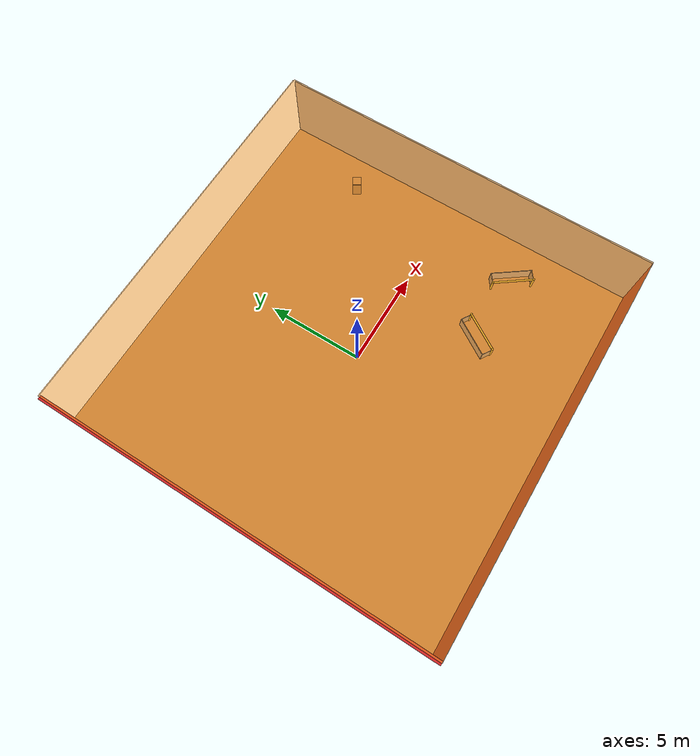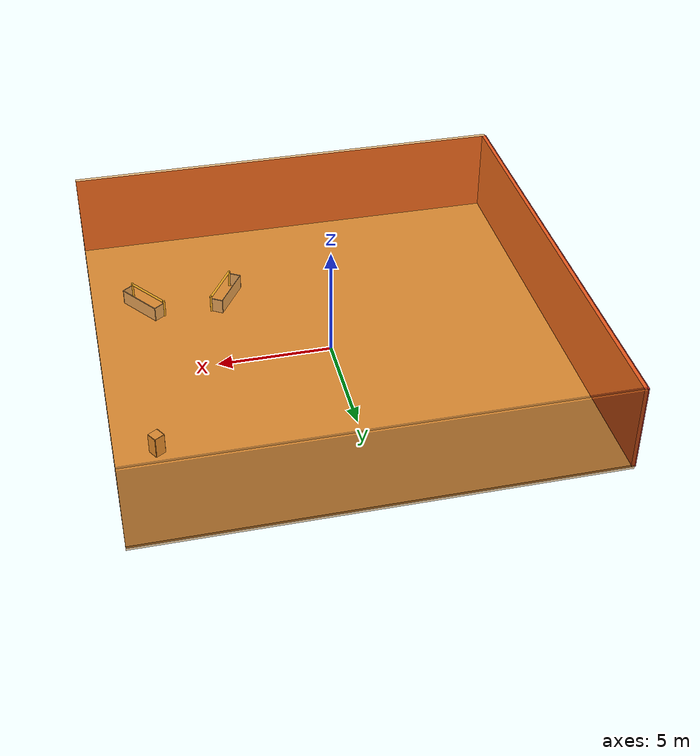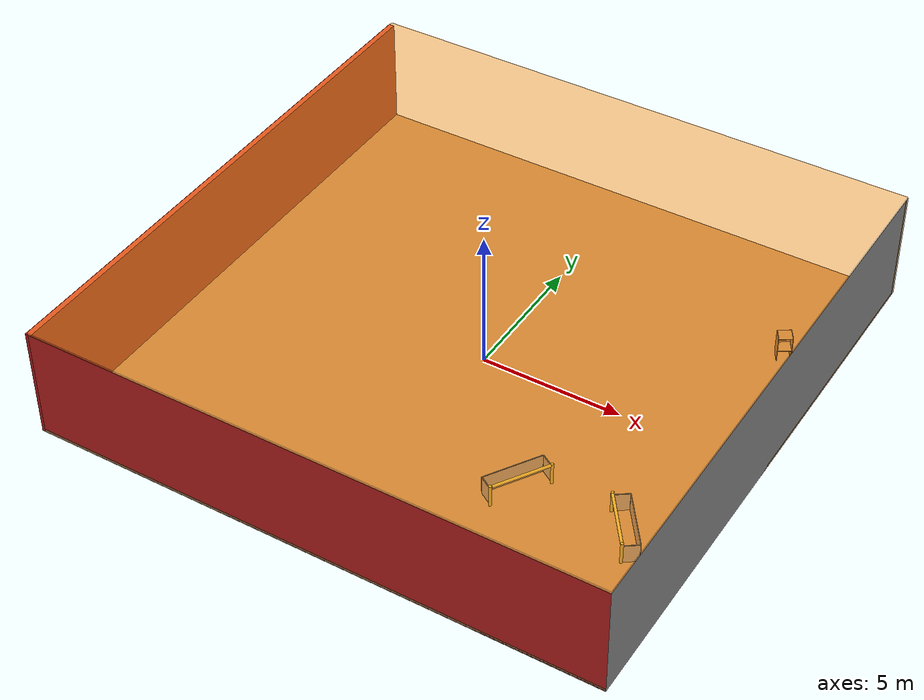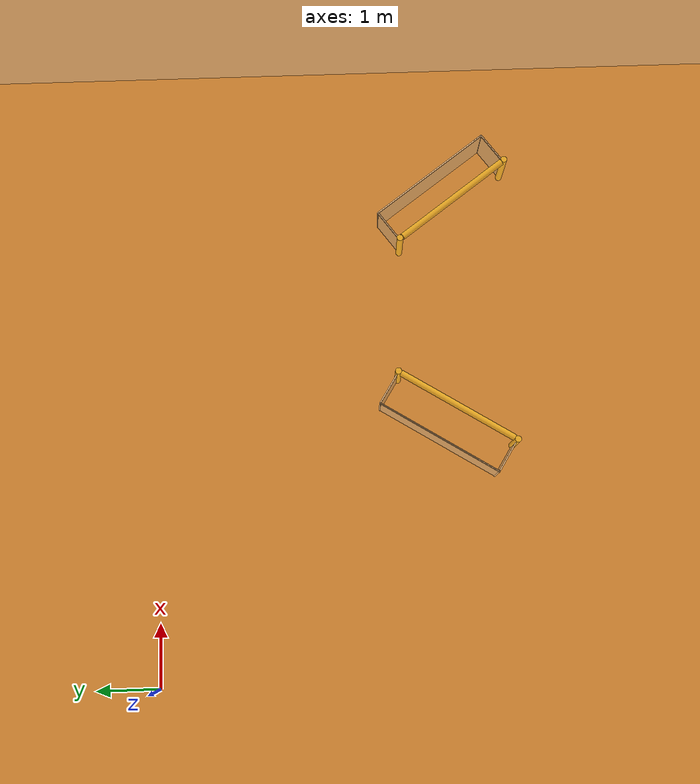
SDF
<sdf version="1.4">
 <world name="default">
  <physics type="ode">
   <max_step_size>0.001</max_step_size>
   <real_time_factor>1</real_time_factor>
   <real_time_update_rate>1000</real_time_update_rate>
   <gravity>0 0 -9.8</gravity>
  </physics>
  <scene><ambient>0.4 0.4 0.4 1</ambient><background>0.7 0.7 0.7 1</background><shadows>1</shadows></scene>
  <model name="Surrounding">
   <static>1</static>
   <link name="Ceiling">
    <collision name="Ceiling_Collision"><geometry><box><size>20 20 0.1</size></box></geometry></collision>
    <visual name="Ceiling_Visual">
     <geometry><box><size>20 20 0.1</size></box></geometry>
     <material>
      <script>
       <uri>file://media/materials/scripts/gazebo.material</uri>
       <name>Gazebo/OrangeTransparent</name>
      </script>
     </material>
    </visual>
    <pose>0 0 4.05 0 0 0</pose>
   </link>
   <link name="Wall_South">
    <collision name="Wall_South_Collision">
     <geometry><box><size>20 0 4</size></box></geometry>
     <pose>0 0 2 0 -0 0</pose>
    </collision>
    <visual name="Wall_South_Visual">
     <pose>0 0 2 0 -0 0</pose>
     <geometry><box><size>20 0 4</size></box></geometry>
     <material>
      <script><uri>file://media/materials/scripts/gazebo.material</uri><name>Gazebo/RedBright</name></script>
     </material>
    </visual>
    <velocity_decay><linear>0</linear><angular>0</angular></velocity_decay>
    <pose>0 -10 0 0 -0 0</pose>
   </link>
   <link name="Wall_East">
    <collision name="Wall_21_Collision">
     <geometry><box><size>20 0 4</size></box></geometry>
     <pose>0 0 2 0 -0 0</pose>
    </collision>
    <visual name="Wall_21_Visual">
     <pose>0 0 2 0 -0 0</pose>
     <geometry><box><size>20 0 4</size></box></geometry>
     <material>
      <script><uri>file://media/materials/scripts/gazebo.material</uri><name>Gazebo/LightOff</name></script>
     </material>
    </visual>
    <velocity_decay><linear>0</linear><angular>0</angular></velocity_decay>
    <pose>10 0 0 0 -0 1.5708</pose>
   </link>
   <link name="Wall_North">
    <collision name="Wall_22_Collision">
     <geometry><box><size>20 0.2 4</size></box></geometry>
     <pose>0 0 2 0 -0 0</pose>
    </collision>
    <visual name="Wall_22_Visual">
     <pose>0 0 2 0 -0 0</pose>
     <geometry><box><size>20 0.2 4</size></box></geometry>
     <material>
      <script>
       <uri>file://media/materials/scripts/gazebo.material</uri>
       <name>Gazebo/OrangeTransparent</name>
      </script>
     </material>
    </visual>
    <velocity_decay><linear>0</linear><angular>0</angular></velocity_decay>
    <pose>0 10 0 0 -0 0</pose>
   </link>
   <link name="Wall_West">
    <collision name="Wall_23_Collision">
     <geometry><box><size>20 0.2 4</size></box></geometry>
     <pose>0 0 2 0 -0 0</pose>
    </collision>
    <visual name="Wall_23_Visual">
     <pose>0 0 2 0 -0 0</pose>
     <geometry><box><size>20 0.2 4</size></box></geometry>
     <material>
      <script><uri>file://media/materials/scripts/gazebo.material</uri><name>Gazebo/Red</name></script>
     </material>
    </visual>
    <velocity_decay><linear>0</linear><angular>0</angular></velocity_decay>
    <pose>-10 0 0 0 0 -1.5708</pose>
   </link>
   <link name="Ground_link">
    <collision name="collision">
     <pose>0 0 .05 0 -0 0</pose>
     <geometry><box><size>20 20 0.1</size></box></geometry>
    </collision>
    <visual name="visual">
     <pose>0 0 .05 0 -0 0</pose>
     <geometry><box><size>20 20 0.1</size></box></geometry>
     <material>
      <script><uri>file://media/materials/scripts/gazebo.material</uri><name>Gazebo/WoodPallet</name></script>
     </material>
    </visual>
   </link>
   <static>1</static>
  </model>
  <spherical_coordinates>
   <surface_model>EARTH_WGS84</surface_model>
   <latitude_deg>0</latitude_deg>
   <longitude_deg>0</longitude_deg>
   <elevation>0</elevation>
   <heading_deg>0</heading_deg>
  </spherical_coordinates>
  <light name="lightball_0" type="diffuse">
   <diffuse>0.8 0.8 0.8 1</diffuse>
   <specular>0.2 0.2 0.2 1</specular>
   <attenuation>
    <range>100</range>
    <constant>0.7</constant>
    <linear>0.01</linear>
    <quadratic>0.001</quadratic>
   </attenuation>
   <direction>-0.5 0.1 -0.9</direction>
   <pose>2.02822742314 -7.43273027815 3.47182433249 0 0 0</pose>
  </light>
  <light name="lightball_1" type="diffuse">
   <diffuse>0.8 0.8 0.8 1</diffuse>
   <specular>0.2 0.2 0.2 1</specular>
   <attenuation>
    <range>100</range>
    <constant>0.7</constant>
    <linear>0.01</linear>
    <quadratic>0.001</quadratic>
   </attenuation>
   <direction>-0.5 0.1 -0.9</direction>
   <pose>2.70705218324 -8.29337326584 3.76907231345 0 0 0</pose>
  </light>
  <light name="lightball_2" type="diffuse">
   <diffuse>0.8 0.8 0.8 1</diffuse>
   <specular>0.2 0.2 0.2 1</specular>
   <attenuation>
    <range>100</range>
    <constant>0.7</constant>
    <linear>0.01</linear>
    <quadratic>0.001</quadratic>
   </attenuation>
   <direction>-0.5 0.1 -0.9</direction>
   <pose>-5.83278828208 -8.48495091581 0.834533819529 0 0 0</pose>
  </light>
  <light name="lightball_3" type="diffuse">
   <diffuse>0.8 0.8 0.8 1</diffuse>
   <specular>0.2 0.2 0.2 1</specular>
   <attenuation>
    <range>100</range>
    <constant>0.7</constant>
    <linear>0.01</linear>
    <quadratic>0.001</quadratic>
   </attenuation>
   <direction>-0.5 0.1 -0.9</direction>
   <pose>-5.0100870508 0.258758169656 0.6900508959 0 0 0</pose>
  </light>
  <light name="lightball_4" type="diffuse">
   <diffuse>0.8 0.8 0.8 1</diffuse>
   <specular>0.2 0.2 0.2 1</specular>
   <attenuation>
    <range>100</range>
    <constant>0.7</constant>
    <linear>0.01</linear>
    <quadratic>0.001</quadratic>
   </attenuation>
   <direction>-0.5 0.1 -0.9</direction>
   <pose>-6.11734239835 3.73347508811 0.809507275743 0 0 0</pose>
  </light>
  <light name="lightball_5" type="diffuse">
   <diffuse>0.8 0.8 0.8 1</diffuse>
   <specular>0.2 0.2 0.2 1</specular>
   <attenuation>
    <range>100</range>
    <constant>0.7</constant>
    <linear>0.01</linear>
    <quadratic>0.001</quadratic>
   </attenuation>
   <direction>-0.5 0.1 -0.9</direction>
   <pose>-8.23904798625 -5.49343711796 2.361720777 0 0 0</pose>
  </light>
  <light name="lightball_6" type="diffuse">
   <diffuse>0.8 0.8 0.8 1</diffuse>
   <specular>0.2 0.2 0.2 1</specular>
   <attenuation>
    <range>100</range>
    <constant>0.7</constant>
    <linear>0.01</linear>
    <quadratic>0.001</quadratic>
   </attenuation>
   <direction>-0.5 0.1 -0.9</direction>
   <pose>-0.836042105423 8.95562979006 2.71206123058 0 0 0</pose>
  </light>
  <light name="lightball_7" type="diffuse">
   <diffuse>0.8 0.8 0.8 1</diffuse>
   <specular>0.2 0.2 0.2 1</specular>
   <attenuation>
    <range>100</range>
    <constant>0.7</constant>
    <linear>0.01</linear>
    <quadratic>0.001</quadratic>
   </attenuation>
   <direction>-0.5 0.1 -0.9</direction>
   <pose>6.96422400434 -4.09367271737 3.69587114972 0 0 0</pose>
  </light>
  <light name="lightball_8" type="diffuse">
   <diffuse>0.8 0.8 0.8 1</diffuse>
   <specular>0.2 0.2 0.2 1</specular>
   <attenuation>
    <range>100</range>
    <constant>0.7</constant>
    <linear>0.01</linear>
    <quadratic>0.001</quadratic>
   </attenuation>
   <direction>-0.5 0.1 -0.9</direction>
   <pose>4.58202139513 -9.31162108986 3.7621546864 0 0 0</pose>
  </light>
  <light name="lightball_9" type="diffuse">
   <diffuse>0.8 0.8 0.8 1</diffuse>
   <specular>0.2 0.2 0.2 1</specular>
   <attenuation>
    <range>100</range>
    <constant>0.7</constant>
    <linear>0.01</linear>
    <quadratic>0.001</quadratic>
   </attenuation>
   <direction>-0.5 0.1 -0.9</direction>
   <pose>-8.48657674588 6.46613534376 2.3858493308 0 0 0</pose>
  </light>
  <light name="lightball_10" type="diffuse">
   <diffuse>0.8 0.8 0.8 1</diffuse>
   <specular>0.2 0.2 0.2 1</specular>
   <attenuation>
    <range>100</range>
    <constant>0.7</constant>
    <linear>0.01</linear>
    <quadratic>0.001</quadratic>
   </attenuation>
   <direction>-0.5 0.1 -0.9</direction>
   <pose>-4.98710262832 0.0998043117083 3.25415718354 0 0 0</pose>
  </light>
  <light name="lightball_11" type="diffuse">
   <diffuse>0.8 0.8 0.8 1</diffuse>
   <specular>0.2 0.2 0.2 1</specular>
   <attenuation>
    <range>100</range>
    <constant>0.7</constant>
    <linear>0.01</linear>
    <quadratic>0.001</quadratic>
   </attenuation>
   <direction>-0.5 0.1 -0.9</direction>
   <pose>-2.55307252878 -3.54147669759 2.03474104499 0 0 0</pose>
  </light>
  <include>
   <uri>model://robocup_3Dsim_goal</uri>
   <pose>4.16369594691 -4.70731989148 0 0 0 2.58450018699</pose>
  </include>
  <include>
   <uri>model://robocup_3Dsim_goal</uri>
   <pose>7.46374022833 -4.76306444235 0 0 0 0.632480948836</pose>
  </include>
  <include><uri>model://cabinet</uri><pose>8.23957471341 5.11295179086 0 0 0 2.12172086586</pose></include>
 </world>
</sdf>

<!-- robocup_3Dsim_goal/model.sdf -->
<sdf version="1.5">
  <model name="robocup_3d_goal">
    <static>true</static>
    <link name="left_post">
      <pose>0 1.05 0.45 0 0 0</pose>
      <collision name="collision">
        <geometry>
          <cylinder>
            <radius>0.05</radius>
            <length>0.9</length>
          </cylinder>
        </geometry>
      </collision>
      <visual name="visual">
        <geometry>
          <cylinder>
            <radius>0.05</radius>
            <length>0.9</length>
          </cylinder>
        </geometry>
        <material>
          <script>
            <uri>file://media/materials/scripts/gazebo.material</uri>
            <name>Gazebo/ZincYellow</name>
          </script>
        </material>
      </visual>
    </link>
    <link name="left_support_horiz_lower">
      <pose>0.30 1.05 0.01 0 0 0</pose>
      <collision name="collision">
        <geometry>
          <box>
            <size>0.50 0.02 0.02</size>
          </box>
        </geometry>
      </collision>
      <visual name="visual">
        <geometry>
          <box>
            <size>0.50 0.02 0.02</size>
          </box>
        </geometry>
        <material>
          <script>
            <uri>file://media/materials/scripts/gazebo.material</uri>
            <name>Gazebo/White</name>
          </script>
        </material>
      </visual>
    </link>
    <link name="left_support_horiz_upper">
      <pose>0.30 1.05 0.79 0 0 0</pose>
      <collision name="collision">
        <geometry>
          <box>
            <size>0.50 0.02 0.02</size>
          </box>
        </geometry>
      </collision>
      <visual name="visual">
        <geometry>
          <box>
            <size>0.50 0.02 0.02</size>
          </box>
        </geometry>
        <material>
          <script>
            <uri>file://media/materials/scripts/gazebo.material</uri>
            <name>Gazebo/White</name>
          </script>
        </material>
      </visual>
    </link>
    <link name="left_support_vertical">
      <pose>0.56 1.05 0.4 0 1.5708 0</pose>
      <collision name="collision">
        <geometry>
          <box>
            <size>0.80 0.02 0.02</size>
          </box>
        </geometry>
      </collision>
      <visual name="visual">
        <geometry>
          <box>
            <size>0.80 0.02 0.02</size>
          </box>
        </geometry>
        <material>
          <script>
            <uri>file://media/materials/scripts/gazebo.material</uri>
            <name>Gazebo/White</name>
          </script>
        </material>
      </visual>
    </link>
    <link name="right_support_horiz_lower">
      <pose>0.30 -1.05 0.01 0 0 0</pose>
      <collision name="collision">
        <geometry>
          <box>
            <size>0.50 0.02 0.02</size>
          </box>
        </geometry>
      </collision>
      <visual name="visual">
        <geometry>
          <box>
            <size>0.50 0.02 0.02</size>
          </box>
        </geometry>
        <material>
          <script>
            <uri>file://media/materials/scripts/gazebo.material</uri>
            <name>Gazebo/White</name>
          </script>
        </material>
      </visual>
    </link>
    <link name="right_support_horiz_upper">
      <pose>0.30 -1.05 0.79 0 0 0</pose>
      <collision name="collision">
        <geometry>
          <box>
            <size>0.50 0.02 0.02</size>
          </box>
        </geometry>
      </collision>
      <visual name="visual">
        <geometry>
          <box>
            <size>0.50 0.02 0.02</size>
          </box>
        </geometry>
        <material>
          <script>
            <uri>file://media/materials/scripts/gazebo.material</uri>
            <name>Gazebo/White</name>
          </script>
        </material>
      </visual>
    </link>
    <link name="right_support_vertical">
      <pose>0.56 -1.05 0.4 0 1.5708 0</pose>
      <collision name="collision">
        <geometry>
          <box>
            <size>0.80 0.02 0.02</size>
          </box>
        </geometry>
      </collision>
      <visual name="visual">
        <geometry>
          <box>
            <size>0.80 0.02 0.02</size>
          </box>
        </geometry>
        <material>
          <script>
            <uri>file://media/materials/scripts/gazebo.material</uri>
            <name>Gazebo/White</name>
          </script>
        </material>
      </visual>
    </link>
    <link name="center_support_horiz_lower">
      <pose>0.56 0 0.01 0 1.5708 0</pose>
      <collision name="collision">
        <geometry>
          <box>
            <size>0.02 2.08 0.02</size>
          </box>
        </geometry>
      </collision>
      <visual name="visual">
        <geometry>
          <box>
            <size>0.02 2.08 0.02</size>
          </box>
        </geometry>
        <material>
          <script>
            <uri>file://media/materials/scripts/gazebo.material</uri>
            <name>Gazebo/White</name>
          </script>
        </material>
      </visual>
    </link>
    <link name="center_support_horiz_upper">
      <pose>0.56 0 0.79 0 1.5708 0</pose>
      <collision name="collision">
        <geometry>
          <box>
            <size>0.02 2.08 0.02</size>
          </box>
        </geometry>
      </collision>
      <visual name="visual">
        <geometry>
          <box>
            <size>0.02 2.08 0.02</size>
          </box>
        </geometry>
        <material>
          <script>
            <uri>file://media/materials/scripts/gazebo.material</uri>
            <name>Gazebo/White</name>
          </script>
        </material>
      </visual>
    </link>
    <link name="right_post">
      <pose>0 -1.05 0.45 0 0 0</pose>
      <collision name="collision">
        <geometry>
          <cylinder>
            <radius>0.05</radius>
            <length>0.9</length>
          </cylinder>
        </geometry>
      </collision>
      <visual name="visual">
        <geometry>
          <cylinder>
            <radius>0.05</radius>
            <length>0.9</length>
          </cylinder>
        </geometry>
        <material>
          <script>
            <uri>file://media/materials/scripts/gazebo.material</uri>
            <name>Gazebo/ZincYellow</name>
          </script>
        </material>
      </visual>
    </link>
    <link name="crossbar">
      <pose>0 0 0.85 1.57 1.57 0</pose>
      <collision name="collision">
        <geometry>
          <cylinder>
            <radius>0.05</radius>
            <length>2.0</length>
          </cylinder>
        </geometry>
      </collision>
      <visual name="visual">
        <geometry>
          <cylinder>
            <radius>0.05</radius>
            <length>2.0</length>
          </cylinder>
        </geometry>
        <material>
          <script>
            <uri>file://media/materials/scripts/gazebo.material</uri>
            <name>Gazebo/ZincYellow</name>
          </script>
        </material>
      </visual>
    </link>
    <link name="center_net">
      <pose>0.56 0 0.40 0 0 0</pose>
      <collision name="collision">
        <geometry>
          <box>
            <size>0.01 2.1 0.80</size>
          </box>
        </geometry>
      </collision>
      <visual name="visual">
        <geometry>
          <box>
            <size>0.01 2.1 0.80</size>
          </box>
        </geometry>
        <material>
          <script>
            <uri>model://../model_source/models/robocup09_spl_field/materials/scripts/</uri>
            <uri>model://../model_source/models/robocup09_spl_field/materials/textures/</uri>
            <name>RoboCup/Net</name>
          </script>
        </material>
      </visual>
    </link>
    <link name="left_net">
      <pose>0.30 1.05 0.40 0 0 0</pose>
      <collision name="collision">
        <geometry>
          <box>
            <size>0.50 0.01 0.76</size>
          </box>
        </geometry>
      </collision>
      <visual name="visual">
        <geometry>
          <box>
            <size>0.50 0.01 0.76</size>
          </box>
        </geometry>
        <material>
          <script>
            <uri>model://../model_source/models/robocup09_spl_field/materials/scripts/</uri>
            <uri>model://../model_source/models/robocup09_spl_field/materials/textures/</uri>
            <name>RoboCup/Net</name>
          </script>
        </material>
      </visual>
    </link>
    <link name="right_net">
      <pose>0.30 -1.05 0.40 0 0 0</pose>
      <collision name="collision">
        <geometry>
          <box>
            <size>0.50 0.01 0.76</size>
          </box>
        </geometry>
      </collision>
      <visual name="visual">
        <geometry>
          <box>
            <size>0.50 0.01 0.76</size>
          </box>
        </geometry>
        <material>
          <script>
            <uri>model://../model_source/models/robocup09_spl_field/materials/scripts/</uri>
            <uri>model://../model_source/models/robocup09_spl_field/materials/textures/</uri>
            <name>RoboCup/Net</name>
          </script>
        </material>
      </visual>
    </link>
  </model>
</sdf>

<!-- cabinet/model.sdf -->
<sdf version="1.5">
  <model name="cabinet">
    <static>true</static>
    <link name="cabinet_bottom_plate">
      <inertial>
        <pose>0 0 -1 0 0 0</pose>
        <inertia>
          <ixx>2.050000</ixx>
          <ixy>0</ixy>
          <ixz>0</ixz>
          <iyy>2.050000</iyy>
          <iyz>0</iyz>
          <izz>2.050000</izz>
        </inertia>
        <mass>25.000000</mass>
      </inertial>
      <collision name="cabinet_bottom_plate_geom">
        <pose>0 0 0.010000 0 0 0</pose>
        <geometry>
          <box>
            <size>0.450000 0.450000 0.020000</size>
          </box>
        </geometry>
      </collision>
      <visual name="cabinet_bottom_plate_geom_visual">
        <pose>0 0 0.010000 0 0 0</pose>
        <geometry>
          <box>
            <size>0.450000 0.450000 0.020000</size>
          </box>
        </geometry>
        <material>
          <script>
            <uri>model://media/materials/scripts/gazebo.material</uri>
            <name>Gazebo/Wood</name>
          </script>
        </material>
      </visual>
      <collision name="cabinet_bottom_plate_geom_cabinet_back_plate">
        <pose>0.235000 0 0.510000 0 0 0</pose>
        <geometry>
          <box>
            <size>0.020000 0.450000 1.020000</size>
          </box>
        </geometry>
      </collision>
      <visual name="cabinet_bottom_plate_geom_cabinet_back_plate_visual">
        <pose>0.235000 0 0.510000 0 0 0</pose>
        <geometry>
          <box>
            <size>0.020000 0.450000 1.020000</size>
          </box>
        </geometry>
        <material>
          <script>
            <uri>model://media/materials/scripts/gazebo.material</uri>
            <name>Gazebo/Wood</name>
          </script>
        </material>
      </visual>
      <collision name="cabinet_bottom_plate_geom_cabinet_left_plate">
        <pose>0 0.235000 0.510000 0 0 0</pose>
        <geometry>
          <box>
            <size>0.450000 0.020000 1.020000</size>
          </box>
        </geometry>
      </collision>
      <visual name="cabinet_bottom_plate_geom_cabinet_left_plate_visual">
        <pose>0 0.235000 0.510000 0 0 0</pose>
        <geometry>
          <box>
            <size>0.450000 0.020000 1.020000</size>
          </box>
        </geometry>
        <material>
          <script>
            <uri>model://media/materials/scripts/gazebo.material</uri>
            <name>Gazebo/Wood</name>
          </script>
        </material>
      </visual>
      <collision name="cabinet_bottom_plate_geom_cabinet_middle_plate">
        <pose>0 0 0.510000 0 0 0</pose>
        <geometry>
          <box>
            <size>0.450000 0.450000 0.020000</size>
          </box>
        </geometry>
      </collision>
      <visual name="cabinet_bottom_plate_geom_cabinet_middle_plate_visual">
        <pose>0 0 0.510000 0 0 0</pose>
        <geometry>
          <box>
            <size>0.450000 0.450000 0.020000</size>
          </box>
        </geometry>
        <material>
          <script>
            <uri>model://media/materials/scripts/gazebo.material</uri>
            <name>Gazebo/Wood</name>
          </script>
        </material>
      </visual>
      <collision name="cabinet_bottom_plate_geom_cabinet_right_plate">
        <pose>0 -0.235000 0.510000 0 0 0</pose>
        <geometry>
          <box>
            <size>0.450000 0.020000 1.020000</size>
          </box>
        </geometry>
      </collision>
      <visual name="cabinet_bottom_plate_geom_cabinet_right_plate_visual">
        <pose>0 -0.235000 0.510000 0 0 0</pose>
        <geometry>
          <box>
            <size>0.450000 0.020000 1.020000</size>
          </box>
        </geometry>
        <material>
          <script>
            <uri>model://media/materials/scripts/gazebo.material</uri>
            <name>Gazebo/Wood</name>
          </script>
        </material>
      </visual>
      <collision name="cabinet_bottom_plate_geom_cabinet_top_plate">
        <pose>0 0 1.010000 0 0 0</pose>
        <geometry>
          <box>
            <size>0.450000 0.450000 0.020000</size>
          </box>
        </geometry>
      </collision>
      <visual name="cabinet_bottom_plate_geom_cabinet_top_plate_visual">
        <pose>0 0 1.010000 0 0 0</pose>
        <geometry>
          <box>
            <size>0.450000 0.450000 0.020000</size>
          </box>
        </geometry>
        <material>
          <script>
            <uri>model://media/materials/scripts/gazebo.material</uri>
            <name>Gazebo/Wood</name>
          </script>
        </material>
      </visual>
    </link>
  </model>
</sdf>
